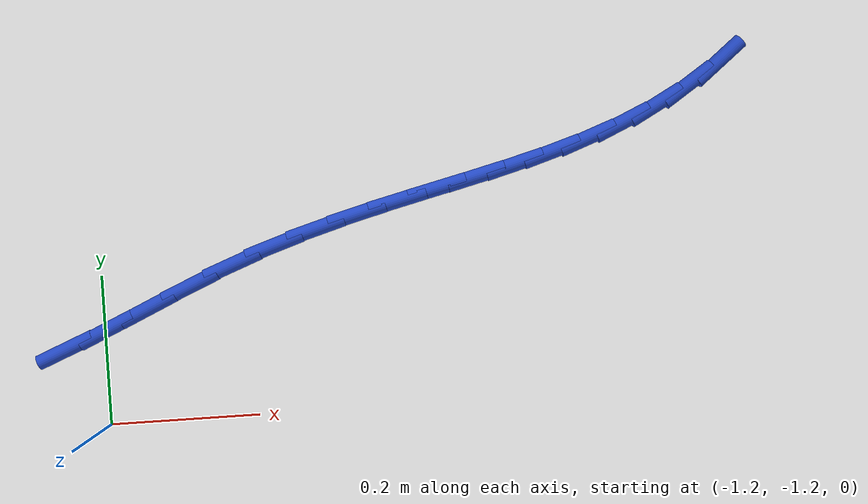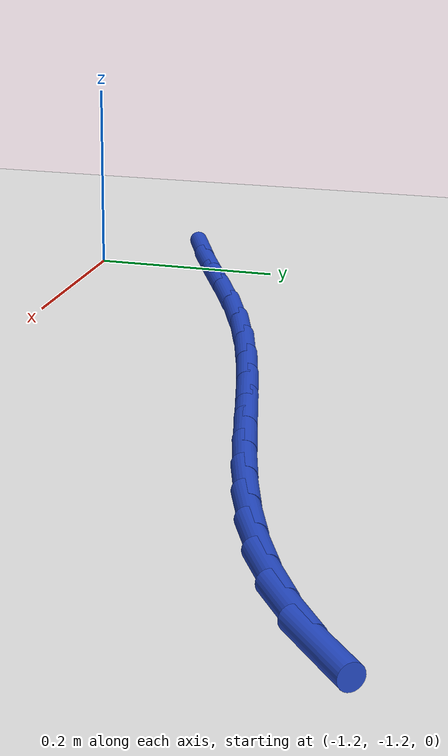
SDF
<sdf version="1.6">
 <world name="default">
  <model name="ground_plane">
   <static>1</static>
   <link name="link">
    <collision name="collision">
     <geometry><plane><normal>0 0 1</normal><size>100 100</size></plane></geometry>
     <surface><friction><ode><mu>100</mu><mu2>50</mu2></ode></friction></surface>
    </collision>
    <visual name="visual">
     <cast_shadows>0</cast_shadows>
     <geometry><plane><normal>0 0 1</normal><size>100 100</size></plane></geometry>
     <material>
      <script><uri>file://media/materials/scripts/gazebo.material</uri><name>Gazebo/WhiteGlow</name></script>
     </material>
    </visual>
   </link>
  </model>
  <model name="line">
   <link name="link_107">
    <pose>-1.251660328761772 -1.0947350261491011 0.01 0 1.57 0.38615665012714784</pose>
    <collision name="collision">
     <geometry><cylinder><radius>0.01</radius><length>0.08</length></cylinder></geometry>
    </collision>
    <visual name="visual">
     <material>
      <script><name>Gazebo/Blue</name><uri>file://media/materials/scripts/gazebo.material</uri></script>
     </material>
     <geometry><cylinder><radius>0.01</radius><length>0.08</length></cylinder></geometry>
    </visual>
   </link>
   <link name="link_108">
    <pose>-1.1955597881695879 -1.071926272345223 0.01 0 1.57 0.41594301858651594</pose>
    <collision name="collision">
     <geometry><cylinder><radius>0.01</radius><length>0.08</length></cylinder></geometry>
    </collision>
    <visual name="visual">
     <material>
      <script><name>Gazebo/Blue</name><uri>file://media/materials/scripts/gazebo.material</uri></script>
     </material>
     <geometry><cylinder><radius>0.01</radius><length>0.08</length></cylinder></geometry>
    </visual>
   </link>
   <link name="link_109">
    <pose>-1.1383490444913893 -1.046655413452318 0.01 0 1.57 0.4211948668331491</pose>
    <collision name="collision">
     <geometry><cylinder><radius>0.01</radius><length>0.08</length></cylinder></geometry>
    </collision>
    <visual name="visual">
     <material>
      <script><name>Gazebo/Blue</name><uri>file://media/materials/scripts/gazebo.material</uri></script>
     </material>
     <geometry><cylinder><radius>0.01</radius><length>0.08</length></cylinder></geometry>
    </visual>
   </link>
   <link name="link_110">
    <pose>-1.0805407009754555 -1.0207569016708677 0.01 0 1.57 0.4031434401217279</pose>
    <collision name="collision">
     <geometry><cylinder><radius>0.01</radius><length>0.08</length></cylinder></geometry>
    </collision>
    <visual name="visual">
     <material>
      <script><name>Gazebo/Blue</name><uri>file://media/materials/scripts/gazebo.material</uri></script>
     </material>
     <geometry><cylinder><radius>0.01</radius><length>0.08</length></cylinder></geometry>
    </visual>
   </link>
   <link name="link_111">
    <pose>-1.0226473608700626 -0.9960651892013513 0.01 0 1.57 0.36197027621581374</pose>
    <collision name="collision">
     <geometry><cylinder><radius>0.01</radius><length>0.08</length></cylinder></geometry>
    </collision>
    <visual name="visual">
     <material>
      <script><name>Gazebo/Blue</name><uri>file://media/materials/scripts/gazebo.material</uri></script>
     </material>
     <geometry><cylinder><radius>0.01</radius><length>0.08</length></cylinder></geometry>
    </visual>
   </link>
   <link name="link_112">
    <pose>-0.9651627079363247 -0.9742983984647385 0.01 0 1.57 0.3156309312921292</pose>
    <collision name="collision">
     <geometry><cylinder><radius>0.01</radius><length>0.08</length></cylinder></geometry>
    </collision>
    <visual name="visual">
     <material>
      <script><name>Gazebo/Blue</name><uri>file://media/materials/scripts/gazebo.material</uri></script>
     </material>
     <geometry><cylinder><radius>0.01</radius><length>0.08</length></cylinder></geometry>
    </visual>
   </link>
   <link name="link_113">
    <pose>-0.9083480269241734 -0.9557457058701091 0.01 0 1.57 0.2782628152887704</pose>
    <collision name="collision">
     <geometry><cylinder><radius>0.01</radius><length>0.08</length></cylinder></geometry>
    </collision>
    <visual name="visual">
     <material>
      <script><name>Gazebo/Blue</name><uri>file://media/materials/scripts/gazebo.material</uri></script>
     </material>
     <geometry><cylinder><radius>0.01</radius><length>0.08</length></cylinder></geometry>
    </visual>
   </link>
   <link name="link_114">
    <pose>-0.8523085310305935 -0.9397366545560766 0.01 0 1.57 0.2511650420135537</pose>
    <collision name="collision">
     <geometry><cylinder><radius>0.01</radius><length>0.08</length></cylinder></geometry>
    </collision>
    <visual name="visual">
     <material>
      <script><name>Gazebo/Blue</name><uri>file://media/materials/scripts/gazebo.material</uri></script>
     </material>
     <geometry><cylinder><radius>0.01</radius><length>0.08</length></cylinder></geometry>
    </visual>
   </link>
   <link name="link_115">
    <pose>-0.7971465421171418 -0.9255830097791278 0.01 0 1.57 0.23524400759163097</pose>
    <collision name="collision">
     <geometry><cylinder><radius>0.01</radius><length>0.08</length></cylinder></geometry>
    </collision>
    <visual name="visual">
     <material>
      <script><name>Gazebo/Blue</name><uri>file://media/materials/scripts/gazebo.material</uri></script>
     </material>
     <geometry><cylinder><radius>0.01</radius><length>0.08</length></cylinder></geometry>
    </visual>
   </link>
   <link name="link_116">
    <pose>-0.7429643820453754 -0.9125965367957487 0.01 0 1.57 0.23133005644101562</pose>
    <collision name="collision">
     <geometry><cylinder><radius>0.01</radius><length>0.08</length></cylinder></geometry>
    </collision>
    <visual name="visual">
     <material>
      <script><name>Gazebo/Blue</name><uri>file://media/materials/scripts/gazebo.material</uri></script>
     </material>
     <geometry><cylinder><radius>0.01</radius><length>0.08</length></cylinder></geometry>
    </visual>
   </link>
   <link name="link_117">
    <pose>-0.689864372676851 -0.9000890008624257 0.01 0 1.57 0.2402223366014306</pose>
    <collision name="collision">
     <geometry><cylinder><radius>0.01</radius><length>0.08</length></cylinder></geometry>
    </collision>
    <visual name="visual">
     <material>
      <script><name>Gazebo/Blue</name><uri>file://media/materials/scripts/gazebo.material</uri></script>
     </material>
     <geometry><cylinder><radius>0.01</radius><length>0.08</length></cylinder></geometry>
    </visual>
   </link>
   <link name="link_118">
    <pose>-0.6379488358731271 -0.8873721672356462 0.01 0 1.57 0.2626917673356368</pose>
    <collision name="collision">
     <geometry><cylinder><radius>0.01</radius><length>0.08</length></cylinder></geometry>
    </collision>
    <visual name="visual">
     <material>
      <script><name>Gazebo/Blue</name><uri>file://media/materials/scripts/gazebo.material</uri></script>
     </material>
     <geometry><cylinder><radius>0.01</radius><length>0.08</length></cylinder></geometry>
    </visual>
   </link>
   <link name="link_119">
    <pose>-0.5873200934957604 -0.8737578011718955 0.01 0 1.57 0.2994166277688206</pose>
    <collision name="collision">
     <geometry><cylinder><radius>0.01</radius><length>0.08</length></cylinder></geometry>
    </collision>
    <visual name="visual">
     <material>
      <script><name>Gazebo/Blue</name><uri>file://media/materials/scripts/gazebo.material</uri></script>
     </material>
     <geometry><cylinder><radius>0.01</radius><length>0.08</length></cylinder></geometry>
    </visual>
   </link>
   <link name="link_120">
    <pose>-0.5380804674063079 -0.8585576679276605 0.01 0 1.57 0.3508255804649785</pose>
    <collision name="collision">
     <geometry><cylinder><radius>0.01</radius><length>0.08</length></cylinder></geometry>
    </collision>
    <visual name="visual">
     <material>
      <script><name>Gazebo/Blue</name><uri>file://media/materials/scripts/gazebo.material</uri></script>
     </material>
     <geometry><cylinder><radius>0.01</radius><length>0.08</length></cylinder></geometry>
    </visual>
   </link>
   <link name="link_121">
    <pose>-0.49033227946632674 -0.8410835327594275 0.01 0 1.57 0.4168356438500459</pose>
    <collision name="collision">
     <geometry><cylinder><radius>0.01</radius><length>0.08</length></cylinder></geometry>
    </collision>
    <visual name="visual">
     <material>
      <script><name>Gazebo/Blue</name><uri>file://media/materials/scripts/gazebo.material</uri></script>
     </material>
     <geometry><cylinder><radius>0.01</radius><length>0.08</length></cylinder></geometry>
    </visual>
   </link>
   <link name="link_122">
    <pose>-0.4441778515373735 -0.8206471609236825 0.01 0 1.57 0.49651386022531013</pose>
    <collision name="collision">
     <geometry><cylinder><radius>0.01</radius><length>0.08</length></cylinder></geometry>
    </collision>
    <visual name="visual">
     <material>
      <script><name>Gazebo/Blue</name><uri>file://media/materials/scripts/gazebo.material</uri></script>
     </material>
     <geometry><cylinder><radius>0.01</radius><length>0.08</length></cylinder></geometry>
    </visual>
   </link>
   <link name="link_123">
    <pose>-0.39971950548100704 -0.7965603176769134 0.01 0 1.57 0.587453538470894</pose>
    <collision name="collision">
     <geometry><cylinder><radius>0.01</radius><length>0.08</length></cylinder></geometry>
    </collision>
    <visual name="visual">
     <material>
      <script><name>Gazebo/Blue</name><uri>file://media/materials/scripts/gazebo.material</uri></script>
     </material>
     <geometry><cylinder><radius>0.01</radius><length>0.08</length></cylinder></geometry>
    </visual>
   </link>
   <link name="link_124">
    <pose>-0.3570597032559313 -0.7681542703835312 0.01 0 1.57 0.6784438529730583</pose>
    <collision name="collision">
     <geometry><cylinder><radius>0.01</radius><length>0.08</length></cylinder></geometry>
    </collision>
    <visual name="visual">
     <material>
      <script><name>Gazebo/Blue</name><uri>file://media/materials/scripts/gazebo.material</uri></script>
     </material>
     <geometry><cylinder><radius>0.01</radius><length>0.08</length></cylinder></geometry>
    </visual>
   </link>
  </model>
 </world>
</sdf>
